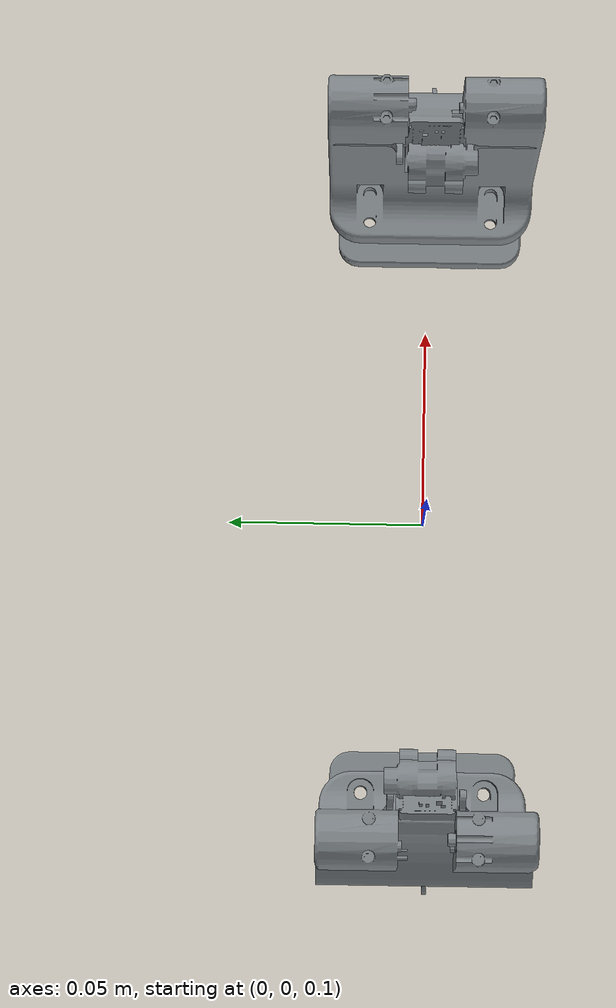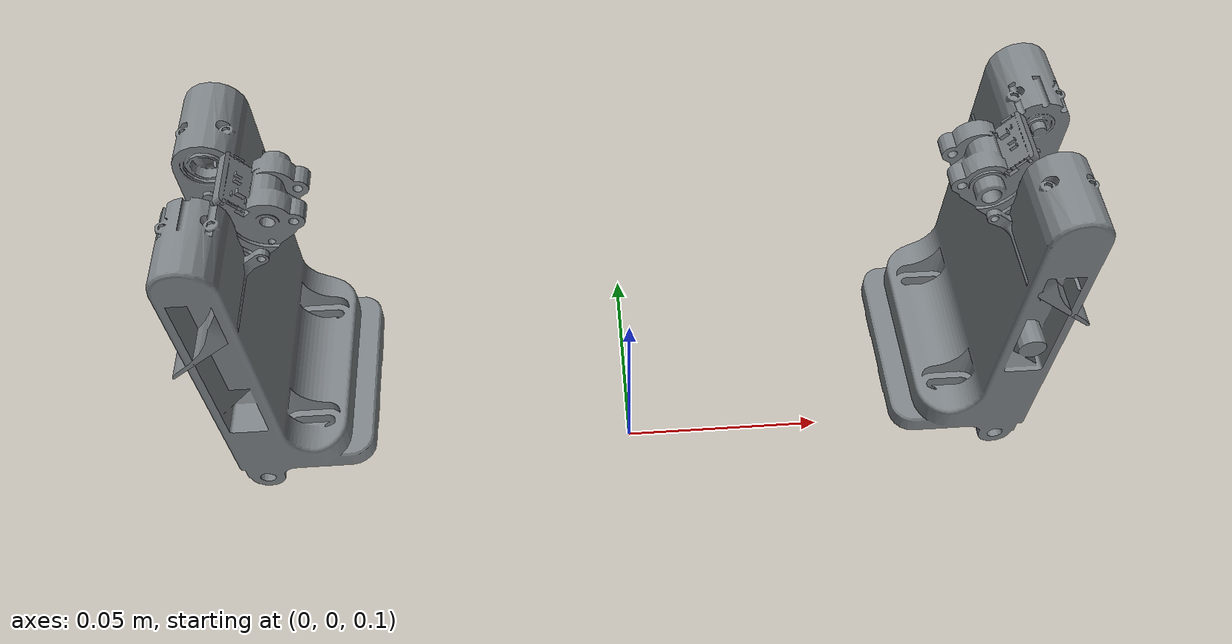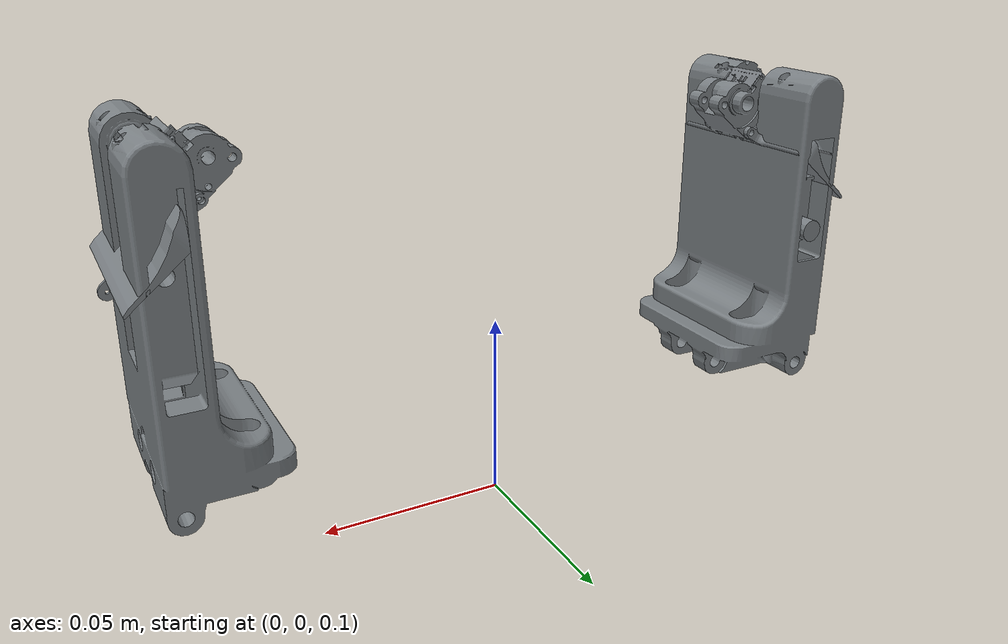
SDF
<?xml version="1.0" ?>
<sdf version="1.7">
	<world name="world">
		<model name="lc_soft_enable_wide_grip">
			<link name="right_finger_link">
				<collision name="lc_soft_enable_wide_grip_Right_Base_RIGHT_BASE_collision.stl">
					<geometry>
						<mesh>
							<uri>Z:/automatic-model-generation/meshes/lc_soft_enable_wide_grip_Right_Base_RIGHT_BASE_collision.stl</uri>
							<scale>1.0 1.0 1.0</scale>
						</mesh>
					</geometry>
					<pose>0 0 0 0 0 0</pose>
				</collision>
				<visual name="lc_soft_enable_wide_grip_Right_Base_RIGHT_BASE.stl">
					<geometry>
						<mesh>
							<uri>Z:/automatic-model-generation/meshes/lc_soft_enable_wide_grip_Right_Base_RIGHT_BASE.stl</uri>
							<scale>1.0 1.0 1.0</scale>
						</mesh>
					</geometry>
					<pose>0 0 0 0 0 0</pose>
					<material>
						<ambient>0.4891 0.5125 0.5281 1.0</ambient>
						<diffuse>0.4891 0.5125 0.5281 1.0</diffuse>
						<specular>0.0 0.0 0.0 1.0</specular>
						<emissive>0.0 0.0 0.0 1.0</emissive>
					</material>
				</visual>
				<gravity>1</gravity>
				<self_collide>1</self_collide>
				<kinematic>0</kinematic>
				<inertial>
					<inertia>
						<ixx>1.1768394e-05</ixx>
						<ixy>-6.2909428e-08</ixy>
						<ixz>-3.6349539e-06</ixz>
						<iyy>3.9431049e-05</iyy>
						<iyz>-3.2865666e-07</iyz>
						<izz>4.1707704e-05</izz>
					</inertia>
					<pose>0.020046839 -0.00032181022 -0.0055554777 0 0 0</pose>
					<mass>0.071622239</mass>
				</inertial>
				<pose relative_to="right_finger">0 0 0 0 0 0</pose>
			</link>
			<link name="right_tip_link">
				<collision name="lc_soft_enable_wide_grip_Right_Distal_RIGHT_DISTAL_collision.stl">
					<geometry>
						<mesh>
							<uri>Z:/automatic-model-generation/meshes/lc_soft_enable_wide_grip_Right_Distal_RIGHT_DISTAL_collision.stl</uri>
							<scale>1.0 1.0 1.0</scale>
						</mesh>
					</geometry>
					<pose>0 0 0 0 0 0</pose>
				</collision>
				<visual name="lc_soft_enable_wide_grip_Right_Distal_RIGHT_DISTAL.stl">
					<geometry>
						<mesh>
							<uri>Z:/automatic-model-generation/meshes/lc_soft_enable_wide_grip_Right_Distal_RIGHT_DISTAL.stl</uri>
							<scale>1.0 1.0 1.0</scale>
						</mesh>
					</geometry>
					<pose>0 0 0 0 0 0</pose>
					<material>
						<ambient>0.4891 0.5125 0.5281 1.0</ambient>
						<diffuse>0.4891 0.5125 0.5281 1.0</diffuse>
						<specular>0.0 0.0 0.0 1.0</specular>
						<emissive>0.0 0.0 0.0 1.0</emissive>
					</material>
				</visual>
				<gravity>1</gravity>
				<self_collide>1</self_collide>
				<kinematic>0</kinematic>
				<inertial>
					<inertia>
						<ixx>2.4290894e-06</ixx>
						<ixy>2.7371321e-07</ixy>
						<ixz>-4.0328611e-09</ixz>
						<iyy>2.6146567e-06</iyy>
						<iyz>9.9713504e-09</iyz>
						<izz>6.7624098e-07</izz>
					</inertia>
					<pose>-0.0081993292 0.0060080724 0.00015047764 0 0 0</pose>
					<mass>0.013727707</mass>
				</inertial>
				<pose relative_to="right_tip">0 0 0 0 0 0</pose>
			</link>
			<link name="left_finger">
				<collision name="lc_soft_enable_wide_grip_Left_Base_left_base_collision.stl">
					<geometry>
						<mesh>
							<uri>Z:/automatic-model-generation/meshes/lc_soft_enable_wide_grip_Left_Base_left_base_collision.stl</uri>
							<scale>1.0 1.0 1.0</scale>
						</mesh>
					</geometry>
					<pose>0 0 0 0 0 0</pose>
				</collision>
				<visual name="lc_soft_enable_wide_grip_Left_Base_left_base.stl">
					<geometry>
						<mesh>
							<uri>Z:/automatic-model-generation/meshes/lc_soft_enable_wide_grip_Left_Base_left_base.stl</uri>
							<scale>1.0 1.0 1.0</scale>
						</mesh>
					</geometry>
					<pose>0 0 0 0 0 0</pose>
					<material>
						<ambient>0.4891 0.5125 0.5281 1.0</ambient>
						<diffuse>0.4891 0.5125 0.5281 1.0</diffuse>
						<specular>0.0 0.0 0.0 1.0</specular>
						<emissive>0.0 0.0 0.0 1.0</emissive>
					</material>
				</visual>
				<gravity>1</gravity>
				<self_collide>1</self_collide>
				<kinematic>0</kinematic>
				<inertial>
					<inertia>
						<ixx>1.1684398e-05</ixx>
						<ixy>-1.3930447e-07</ixy>
						<ixz>-3.4062422e-06</ixz>
						<iyy>3.8446897e-05</iyy>
						<iyz>-3.5507094e-07</iyz>
						<izz>4.0761693e-05</izz>
					</inertia>
					<pose>0.019776202 -0.00030196559 -0.0056210743 0 0 0</pose>
					<mass>0.071214922</mass>
				</inertial>
				<pose relative_to="left_base">0 0 0 0 0 0</pose>
			</link>
			<link name="left_tip_link">
				<collision name="lc_soft_enable_wide_grip_Left_Distal_LEFT_DISTAL_collision.stl">
					<geometry>
						<mesh>
							<uri>Z:/automatic-model-generation/meshes/lc_soft_enable_wide_grip_Left_Distal_LEFT_DISTAL_collision.stl</uri>
							<scale>1.0 1.0 1.0</scale>
						</mesh>
					</geometry>
					<pose>0 0 0 0 0 0</pose>
				</collision>
				<visual name="lc_soft_enable_wide_grip_Left_Distal_LEFT_DISTAL.stl">
					<geometry>
						<mesh>
							<uri>Z:/automatic-model-generation/meshes/lc_soft_enable_wide_grip_Left_Distal_LEFT_DISTAL.stl</uri>
							<scale>1.0 1.0 1.0</scale>
						</mesh>
					</geometry>
					<pose>0 0 0 0 0 0</pose>
					<material>
						<ambient>0.4891 0.5125 0.5281 1.0</ambient>
						<diffuse>0.4891 0.5125 0.5281 1.0</diffuse>
						<specular>0.0 0.0 0.0 1.0</specular>
						<emissive>0.0 0.0 0.0 1.0</emissive>
					</material>
				</visual>
				<gravity>1</gravity>
				<self_collide>1</self_collide>
				<kinematic>0</kinematic>
				<inertial>
					<inertia>
						<ixx>2.4290894e-06</ixx>
						<ixy>2.7371321e-07</ixy>
						<ixz>-4.0328611e-09</ixz>
						<iyy>2.6146567e-06</iyy>
						<iyz>9.9713504e-09</iyz>
						<izz>6.7624098e-07</izz>
					</inertia>
					<pose>-0.0081993292 0.0060080724 0.00015047764 0 0 0</pose>
					<mass>0.013727707</mass>
				</inertial>
				<pose relative_to="left_tip">0 0 0 0 0 0</pose>
			</link>
			<joint name="right_finger" type="prismatic">
				<parent>world</parent>
				<child>right_finger_link</child>
				<axis>
					<limit>
						<lower>0</lower>
						<upper>0.0575</upper>
						<effort>100000000000000000</effort>
						<velocity>100000000000000000</velocity>
						<stiffness>100000000</stiffness>
						<dissipation>1</dissipation>
					</limit>
					<xyz>0 0 1</xyz>
				</axis>
				<pose relative_to="world">-0.07658 -4.689172593935216e-18 0.1335 -3.141592653589793 -1.5707963057214722 0</pose>
			</joint>
			<joint name="right_tip" type="revolute">
				<parent>right_finger_link</parent>
				<child>right_tip_link</child>
				<axis>
					<limit>
						<lower>0</lower>
						<upper>1.0471975511965976</upper>
						<effort>100000000000000000</effort>
						<velocity>100000000000000000</velocity>
						<stiffness>100000000</stiffness>
						<dissipation>1</dissipation>
					</limit>
					<xyz>0 0 1</xyz>
				</axis>
				<pose relative_to="right_finger_link">0.0695 3.288176655710644e-19 0.00537 -1.5707963267948963 0.87266404218453 3.141592653589793</pose>
			</joint>
			<joint name="left_base" type="prismatic">
				<parent>world</parent>
				<child>left_finger</child>
				<axis>
					<limit>
						<lower>0</lower>
						<upper>0.0575</upper>
						<effort>100000000000000000</effort>
						<velocity>100000000000000000</velocity>
						<stiffness>100000000</stiffness>
						<dissipation>1</dissipation>
					</limit>
					<xyz>0 0 1</xyz>
				</axis>
				<pose relative_to="world">0.07658 4.689172593935216e-18 0.1335 1.874699728327322e-33 -1.5707963057214722 0</pose>
			</joint>
			<joint name="left_tip" type="revolute">
				<parent>left_finger</parent>
				<child>left_tip_link</child>
				<axis>
					<limit>
						<lower>0</lower>
						<upper>1.0471975511965976</upper>
						<effort>100000000000000000</effort>
						<velocity>100000000000000000</velocity>
						<stiffness>100000000</stiffness>
						<dissipation>1</dissipation>
					</limit>
					<xyz>0 0 1</xyz>
				</axis>
				<pose relative_to="left_finger">0.0695 -3.288176655710644e-19 0.00537 -1.5707963267948968 0.8726640421845309 3.141592653589793</pose>
			</joint>
		</model>
	</world>
</sdf>
